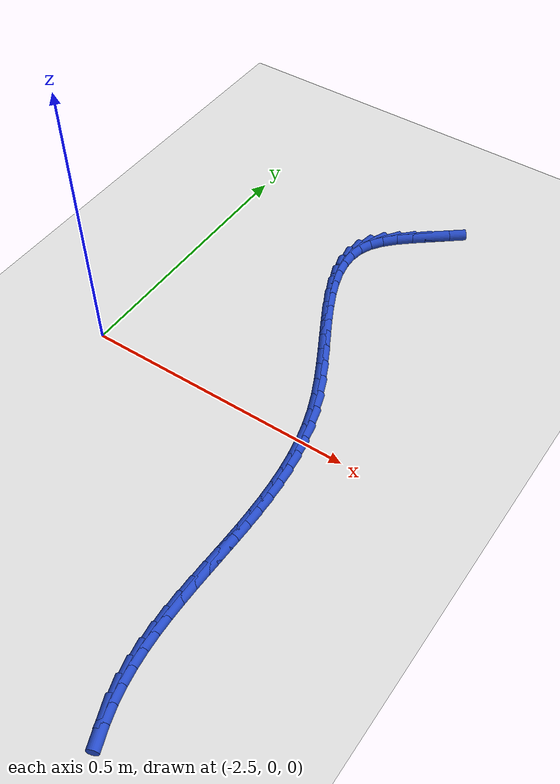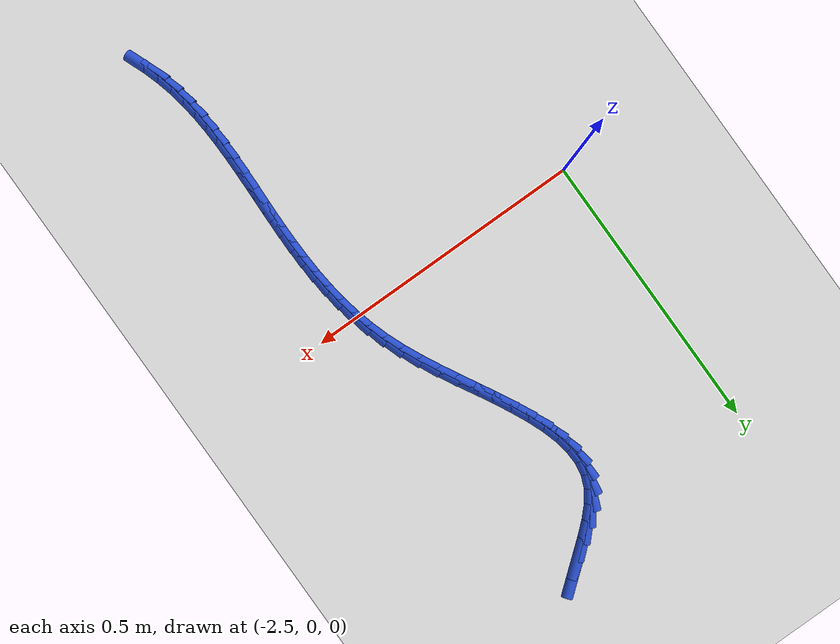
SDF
<sdf version="1.6">
 <world name="default">
  <model name="ground_plane">
   <static>1</static>
   <link name="link">
    <collision name="collision">
     <geometry><plane><normal>0 0 1</normal><size>100 100</size></plane></geometry>
     <surface><friction><ode><mu>100</mu><mu2>50</mu2></ode></friction></surface>
    </collision>
    <visual name="visual">
     <cast_shadows>0</cast_shadows>
     <geometry><plane><normal>0 0 1</normal><size>100 100</size></plane></geometry>
     <material>
      <script><uri>file://media/materials/scripts/gazebo.material</uri><name>Gazebo/WhiteGlow</name></script>
     </material>
    </visual>
   </link>
  </model>
  <model name="line">
   <link name="link_99">
    <pose>-2.1199266256740112 0.5585804029105083 0.01 0 1.57 0.6795378370866663</pose>
    <collision name="collision">
     <geometry><cylinder><radius>0.01</radius><length>0.08</length></cylinder></geometry>
    </collision>
    <visual name="visual">
     <material>
      <script><name>Gazebo/Blue</name><uri>file://media/materials/scripts/gazebo.material</uri></script>
     </material>
     <geometry><cylinder><radius>0.01</radius><length>0.08</length></cylinder></geometry>
    </visual>
   </link>
   <link name="link_100">
    <pose>-2.1450293427928253 0.5382999861786456 0.01 0 1.57 0.6789704126665324</pose>
    <collision name="collision">
     <geometry><cylinder><radius>0.01</radius><length>0.08</length></cylinder></geometry>
    </collision>
    <visual name="visual">
     <material>
      <script><name>Gazebo/Blue</name><uri>file://media/materials/scripts/gazebo.material</uri></script>
     </material>
     <geometry><cylinder><radius>0.01</radius><length>0.08</length></cylinder></geometry>
    </visual>
   </link>
   <link name="link_101">
    <pose>-2.169661494198632 0.5184228271902851 0.01 0 1.57 0.7187098894830343</pose>
    <collision name="collision">
     <geometry><cylinder><radius>0.01</radius><length>0.08</length></cylinder></geometry>
    </collision>
    <visual name="visual">
     <material>
      <script><name>Gazebo/Blue</name><uri>file://media/materials/scripts/gazebo.material</uri></script>
     </material>
     <geometry><cylinder><radius>0.01</radius><length>0.08</length></cylinder></geometry>
    </visual>
   </link>
   <link name="link_102">
    <pose>-2.1924496767111417 0.49848799966165713 0.01 0 1.57 0.8074465282520207</pose>
    <collision name="collision">
     <geometry><cylinder><radius>0.01</radius><length>0.08</length></cylinder></geometry>
    </collision>
    <visual name="visual">
     <material>
      <script><name>Gazebo/Blue</name><uri>file://media/materials/scripts/gazebo.material</uri></script>
     </material>
     <geometry><cylinder><radius>0.01</radius><length>0.08</length></cylinder></geometry>
    </visual>
   </link>
   <link name="link_103">
    <pose>-2.2120204871500655 0.47803457730899257 0.01 0 1.57 0.9607917276209877</pose>
    <collision name="collision">
     <geometry><cylinder><radius>0.01</radius><length>0.08</length></cylinder></geometry>
    </collision>
    <visual name="visual">
     <material>
      <script><name>Gazebo/Blue</name><uri>file://media/materials/scripts/gazebo.material</uri></script>
     </material>
     <geometry><cylinder><radius>0.01</radius><length>0.08</length></cylinder></geometry>
    </visual>
   </link>
   <link name="link_104">
    <pose>-2.227000522335113 0.45660163384852176 0.01 0 1.57 1.1820311931334824</pose>
    <collision name="collision">
     <geometry><cylinder><radius>0.01</radius><length>0.08</length></cylinder></geometry>
    </collision>
    <visual name="visual">
     <material>
      <script><name>Gazebo/Blue</name><uri>file://media/materials/scripts/gazebo.material</uri></script>
     </material>
     <geometry><cylinder><radius>0.01</radius><length>0.08</length></cylinder></geometry>
    </visual>
   </link>
   <link name="link_105">
    <pose>-2.2363324832610956 0.43381920079459246 0.01 0 1.57 1.4083961051687404</pose>
    <collision name="collision">
     <geometry><cylinder><radius>0.01</radius><length>0.08</length></cylinder></geometry>
    </collision>
    <visual name="visual">
     <material>
      <script><name>Gazebo/Blue</name><uri>file://media/materials/scripts/gazebo.material</uri></script>
     </material>
     <geometry><cylinder><radius>0.01</radius><length>0.08</length></cylinder></geometry>
    </visual>
   </link>
   <link name="link_106">
    <pose>-2.240284464303426 0.409698686666454 0.01 0 1.57 -1.5387492273663177</pose>
    <collision name="collision">
     <geometry><cylinder><radius>0.01</radius><length>0.08</length></cylinder></geometry>
    </collision>
    <visual name="visual">
     <material>
      <script><name>Gazebo/Blue</name><uri>file://media/materials/scripts/gazebo.material</uri></script>
     </material>
     <geometry><cylinder><radius>0.01</radius><length>0.08</length></cylinder></geometry>
    </visual>
   </link>
   <link name="link_107">
    <pose>-2.239471880376734 0.3843514401738888 0.01 0 1.57 -1.3854487558900443</pose>
    <collision name="collision">
     <geometry><cylinder><radius>0.01</radius><length>0.08</length></cylinder></geometry>
    </collision>
    <visual name="visual">
     <material>
      <script><name>Gazebo/Blue</name><uri>file://media/materials/scripts/gazebo.material</uri></script>
     </material>
     <geometry><cylinder><radius>0.01</radius><length>0.08</length></cylinder></geometry>
    </visual>
   </link>
   <link name="link_108">
    <pose>-2.2345101476777214 0.35788881039558984 0.01 0 1.57 -1.2708285435798585</pose>
    <collision name="collision">
     <geometry><cylinder><radius>0.01</radius><length>0.08</length></cylinder></geometry>
    </collision>
    <visual name="visual">
     <material>
      <script><name>Gazebo/Blue</name><uri>file://media/materials/scripts/gazebo.material</uri></script>
     </material>
     <geometry><cylinder><radius>0.01</radius><length>0.08</length></cylinder></geometry>
    </visual>
   </link>
   <link name="link_109">
    <pose>-2.2260146824030898 0.3304221464102519 0.01 0 1.57 -1.1881626240495404</pose>
    <collision name="collision">
     <geometry><cylinder><radius>0.01</radius><length>0.08</length></cylinder></geometry>
    </collision>
    <visual name="visual">
     <material>
      <script><name>Gazebo/Blue</name><uri>file://media/materials/scripts/gazebo.material</uri></script>
     </material>
     <geometry><cylinder><radius>0.01</radius><length>0.08</length></cylinder></geometry>
    </visual>
   </link>
   <link name="link_110">
    <pose>-2.2146009007495406 0.30206279729656815 0.01 0 1.57 -1.1308577144128675</pose>
    <collision name="collision">
     <geometry><cylinder><radius>0.01</radius><length>0.08</length></cylinder></geometry>
    </collision>
    <visual name="visual">
     <material>
      <script><name>Gazebo/Blue</name><uri>file://media/materials/scripts/gazebo.material</uri></script>
     </material>
     <geometry><cylinder><radius>0.01</radius><length>0.08</length></cylinder></geometry>
    </visual>
   </link>
   <link name="link_111">
    <pose>-2.2008842189137754 0.27292211213323214 0.01 0 1.57 -1.093851897696863</pose>
    <collision name="collision">
     <geometry><cylinder><radius>0.01</radius><length>0.08</length></cylinder></geometry>
    </collision>
    <visual name="visual">
     <material>
      <script><name>Gazebo/Blue</name><uri>file://media/materials/scripts/gazebo.material</uri></script>
     </material>
     <geometry><cylinder><radius>0.01</radius><length>0.08</length></cylinder></geometry>
    </visual>
   </link>
   <link name="link_112">
    <pose>-2.1854800530924954 0.24311143999893725 0.01 0 1.57 -1.073707041160102</pose>
    <collision name="collision">
     <geometry><cylinder><radius>0.01</radius><length>0.08</length></cylinder></geometry>
    </collision>
    <visual name="visual">
     <material>
      <script><name>Gazebo/Blue</name><uri>file://media/materials/scripts/gazebo.material</uri></script>
     </material>
     <geometry><cylinder><radius>0.01</radius><length>0.08</length></cylinder></geometry>
    </visual>
   </link>
   <link name="link_113">
    <pose>-2.169003819482403 0.2127421299723778 0.01 0 1.57 -1.068357907449552</pose>
    <collision name="collision">
     <geometry><cylinder><radius>0.01</radius><length>0.08</length></cylinder></geometry>
    </collision>
    <visual name="visual">
     <material>
      <script><name>Gazebo/Blue</name><uri>file://media/materials/scripts/gazebo.material</uri></script>
     </material>
     <geometry><cylinder><radius>0.01</radius><length>0.08</length></cylinder></geometry>
    </visual>
   </link>
   <link name="link_114">
    <pose>-2.152070934280199 0.18192553113224713 0.01 0 1.57 -1.0768630019817886</pose>
    <collision name="collision">
     <geometry><cylinder><radius>0.01</radius><length>0.08</length></cylinder></geometry>
    </collision>
    <visual name="visual">
     <material>
      <script><name>Gazebo/Blue</name><uri>file://media/materials/scripts/gazebo.material</uri></script>
     </material>
     <geometry><cylinder><radius>0.01</radius><length>0.08</length></cylinder></geometry>
    </visual>
   </link>
   <link name="link_115">
    <pose>-2.1352968136825843 0.15077299255723836 0.01 0 1.57 -1.0992413630656974</pose>
    <collision name="collision">
     <geometry><cylinder><radius>0.01</radius><length>0.08</length></cylinder></geometry>
    </collision>
    <visual name="visual">
     <material>
      <script><name>Gazebo/Blue</name><uri>file://media/materials/scripts/gazebo.material</uri></script>
     </material>
     <geometry><cylinder><radius>0.01</radius><length>0.08</length></cylinder></geometry>
    </visual>
   </link>
   <link name="link_116">
    <pose>-2.119296873886262 0.11939586332604618 0.01 0 1.57 -1.136392260298267</pose>
    <collision name="collision">
     <geometry><cylinder><radius>0.01</radius><length>0.08</length></cylinder></geometry>
    </collision>
    <visual name="visual">
     <material>
      <script><name>Gazebo/Blue</name><uri>file://media/materials/scripts/gazebo.material</uri></script>
     </material>
     <geometry><cylinder><radius>0.01</radius><length>0.08</length></cylinder></geometry>
    </visual>
   </link>
   <link name="link_117">
    <pose>-2.104686531087934 0.08790549251736374 0.01 0 1.57 -1.1899909382382505</pose>
    <collision name="collision">
     <geometry><cylinder><radius>0.01</radius><length>0.08</length></cylinder></geometry>
    </collision>
    <visual name="visual">
     <material>
      <script><name>Gazebo/Blue</name><uri>file://media/materials/scripts/gazebo.material</uri></script>
     </material>
     <geometry><cylinder><radius>0.01</radius><length>0.08</length></cylinder></geometry>
    </visual>
   </link>
   <link name="link_118">
    <pose>-2.092078576600445 0.05641291782274466 0.01 0 1.57 -1.254895404778519</pose>
    <collision name="collision">
     <geometry><cylinder><radius>0.01</radius><length>0.08</length></cylinder></geometry>
    </collision>
    <visual name="visual">
     <material>
      <script><name>Gazebo/Blue</name><uri>file://media/materials/scripts/gazebo.material</uri></script>
     </material>
     <geometry><cylinder><radius>0.01</radius><length>0.08</length></cylinder></geometry>
    </visual>
   </link>
   <link name="link_119">
    <pose>-2.081810231692027 0.02499648635664493 0.01 0 1.57 -1.3175795117682252</pose>
    <collision name="collision">
     <geometry><cylinder><radius>0.01</radius><length>0.08</length></cylinder></geometry>
    </collision>
    <visual name="visual">
     <material>
      <script><name>Gazebo/Blue</name><uri>file://media/materials/scripts/gazebo.material</uri></script>
     </material>
     <geometry><cylinder><radius>0.01</radius><length>0.08</length></cylinder></geometry>
    </visual>
   </link>
   <link name="link_120">
    <pose>-2.0737047612483774 -0.006326424857663333 0.01 0 1.57 -1.3755026729109945</pose>
    <collision name="collision">
     <geometry><cylinder><radius>0.01</radius><length>0.08</length></cylinder></geometry>
    </collision>
    <visual name="visual">
     <material>
      <script><name>Gazebo/Blue</name><uri>file://media/materials/scripts/gazebo.material</uri></script>
     </material>
     <geometry><cylinder><radius>0.01</radius><length>0.08</length></cylinder></geometry>
    </visual>
   </link>
   <link name="link_121">
    <pose>-2.067529240212526 -0.037545104549187844 0.01 0 1.57 -1.4277933556775826</pose>
    <collision name="collision">
     <geometry><cylinder><radius>0.01</radius><length>0.08</length></cylinder></geometry>
    </collision>
    <visual name="visual">
     <material>
      <script><name>Gazebo/Blue</name><uri>file://media/materials/scripts/gazebo.material</uri></script>
     </material>
     <geometry><cylinder><radius>0.01</radius><length>0.08</length></cylinder></geometry>
    </visual>
   </link>
   <link name="link_122">
    <pose>-2.0630507435275027 -0.068648841446936 0.01 0 1.57 -1.473794297307109</pose>
    <collision name="collision">
     <geometry><cylinder><radius>0.01</radius><length>0.08</length></cylinder></geometry>
    </collision>
    <visual name="visual">
     <material>
      <script><name>Gazebo/Blue</name><uri>file://media/materials/scripts/gazebo.material</uri></script>
     </material>
     <geometry><cylinder><radius>0.01</radius><length>0.08</length></cylinder></geometry>
    </visual>
   </link>
   <link name="link_123">
    <pose>-2.0600363461363385 -0.09962692427991512 0.01 0 1.57 -1.5130420841774819</pose>
    <collision name="collision">
     <geometry><cylinder><radius>0.01</radius><length>0.08</length></cylinder></geometry>
    </collision>
    <visual name="visual">
     <material>
      <script><name>Gazebo/Blue</name><uri>file://media/materials/scripts/gazebo.material</uri></script>
     </material>
     <geometry><cylinder><radius>0.01</radius><length>0.08</length></cylinder></geometry>
    </visual>
   </link>
   <link name="link_124">
    <pose>-2.0582531229820638 -0.13046864177713255 0.01 0 1.57 -1.545228250695463</pose>
    <collision name="collision">
     <geometry><cylinder><radius>0.01</radius><length>0.08</length></cylinder></geometry>
    </collision>
    <visual name="visual">
     <material>
      <script><name>Gazebo/Blue</name><uri>file://media/materials/scripts/gazebo.material</uri></script>
     </material>
     <geometry><cylinder><radius>0.01</radius><length>0.08</length></cylinder></geometry>
    </visual>
   </link>
   <link name="link_125">
    <pose>-2.0574681490077094 -0.16116328266759652 0.01 0 1.57 -1.5701528469744557</pose>
    <collision name="collision">
     <geometry><cylinder><radius>0.01</radius><length>0.08</length></cylinder></geometry>
    </collision>
    <visual name="visual">
     <material>
      <script><name>Gazebo/Blue</name><uri>file://media/materials/scripts/gazebo.material</uri></script>
     </material>
     <geometry><cylinder><radius>0.01</radius><length>0.08</length></cylinder></geometry>
    </visual>
   </link>
   <link name="link_126">
    <pose>-2.057448499156304 -0.19170013568031266 0.01 0 1.57 1.553913604067462</pose>
    <collision name="collision">
     <geometry><cylinder><radius>0.01</radius><length>0.08</length></cylinder></geometry>
    </collision>
    <visual name="visual">
     <material>
      <script><name>Gazebo/Blue</name><uri>file://media/materials/scripts/gazebo.material</uri></script>
     </material>
     <geometry><cylinder><radius>0.01</radius><length>0.08</length></cylinder></geometry>
    </visual>
   </link>
   <link name="link_127">
    <pose>-2.0579612483708787 -0.2220684895442892 0.01 0 1.57 1.5438983350073008</pose>
    <collision name="collision">
     <geometry><cylinder><radius>0.01</radius><length>0.08</length></cylinder></geometry>
    </collision>
    <visual name="visual">
     <material>
      <script><name>Gazebo/Blue</name><uri>file://media/materials/scripts/gazebo.material</uri></script>
     </material>
     <geometry><cylinder><radius>0.01</radius><length>0.08</length></cylinder></geometry>
    </visual>
   </link>
   <link name="link_128">
    <pose>-2.058773471594464 -0.25225763298853343 0.01 0 1.57 1.5415115354393067</pose>
    <collision name="collision">
     <geometry><cylinder><radius>0.01</radius><length>0.08</length></cylinder></geometry>
    </collision>
    <visual name="visual">
     <material>
      <script><name>Gazebo/Blue</name><uri>file://media/materials/scripts/gazebo.material</uri></script>
     </material>
     <geometry><cylinder><radius>0.01</radius><length>0.08</length></cylinder></geometry>
    </visual>
   </link>
   <link name="link_129">
    <pose>-2.0596522437700906 -0.28225685474205287 0.01 0 1.57 1.5468938393421277</pose>
    <collision name="collision">
     <geometry><cylinder><radius>0.01</radius><length>0.08</length></cylinder></geometry>
    </collision>
    <visual name="visual">
     <material>
      <script><name>Gazebo/Blue</name><uri>file://media/materials/scripts/gazebo.material</uri></script>
     </material>
     <geometry><cylinder><radius>0.01</radius><length>0.08</length></cylinder></geometry>
    </visual>
   </link>
   <link name="link_130">
    <pose>-2.0603646398407873 -0.3120554435338546 0.01 0 1.57 1.5602146309528782</pose>
    <collision name="collision">
     <geometry><cylinder><radius>0.01</radius><length>0.08</length></cylinder></geometry>
    </collision>
    <visual name="visual">
     <material>
      <script><name>Gazebo/Blue</name><uri>file://media/materials/scripts/gazebo.material</uri></script>
     </material>
     <geometry><cylinder><radius>0.01</radius><length>0.08</length></cylinder></geometry>
    </visual>
   </link>
   <link name="link_131">
    <pose>-2.0606777347495866 -0.3416426880929462 0.01 0 1.57 -1.559929080323329</pose>
    <collision name="collision">
     <geometry><cylinder><radius>0.01</radius><length>0.08</length></cylinder></geometry>
    </collision>
    <visual name="visual">
     <material>
      <script><name>Gazebo/Blue</name><uri>file://media/materials/scripts/gazebo.material</uri></script>
     </material>
     <geometry><cylinder><radius>0.01</radius><length>0.08</length></cylinder></geometry>
    </visual>
   </link>
   <link name="link_132">
    <pose>-2.060358603439517 -0.3710078771483356 0.01 0 1.57 -1.5301669944932637</pose>
    <collision name="collision">
     <geometry><cylinder><radius>0.01</radius><length>0.08</length></cylinder></geometry>
    </collision>
    <visual name="visual">
     <material>
      <script><name>Gazebo/Blue</name><uri>file://media/materials/scripts/gazebo.material</uri></script>
     </material>
     <geometry><cylinder><radius>0.01</radius><length>0.08</length></cylinder></geometry>
    </visual>
   </link>
   <link name="link_133">
    <pose>-2.0591743208536095 -0.40014029942902885 0.01 0 1.57 -1.4919555084154257</pose>
    <collision name="collision">
     <geometry><cylinder><radius>0.01</radius><length>0.08</length></cylinder></geometry>
    </collision>
    <visual name="visual">
     <material>
      <script><name>Gazebo/Blue</name><uri>file://media/materials/scripts/gazebo.material</uri></script>
     </material>
     <geometry><cylinder><radius>0.01</radius><length>0.08</length></cylinder></geometry>
    </visual>
   </link>
   <link name="link_134">
    <pose>-2.056891961934894 -0.42902924366403383 0.01 0 1.57 -1.4452718544506842</pose>
    <collision name="collision">
     <geometry><cylinder><radius>0.01</radius><length>0.08</length></cylinder></geometry>
    </collision>
    <visual name="visual">
     <material>
      <script><name>Gazebo/Blue</name><uri>file://media/materials/scripts/gazebo.material</uri></script>
     </material>
     <geometry><cylinder><radius>0.01</radius><length>0.08</length></cylinder></geometry>
    </visual>
   </link>
   <link name="link_135">
    <pose>-2.0532786016264017 -0.4576639985823581 0.01 0 1.57 -1.3902901265583332</pose>
    <collision name="collision">
     <geometry><cylinder><radius>0.01</radius><length>0.08</length></cylinder></geometry>
    </collision>
    <visual name="visual">
     <material>
      <script><name>Gazebo/Blue</name><uri>file://media/materials/scripts/gazebo.material</uri></script>
     </material>
     <geometry><cylinder><radius>0.01</radius><length>0.08</length></cylinder></geometry>
    </visual>
   </link>
   <link name="link_136">
    <pose>-2.048101314871162 -0.4860338529130089 0.01 0 1.57 -1.3274740308224204</pose>
    <collision name="collision">
     <geometry><cylinder><radius>0.01</radius><length>0.08</length></cylinder></geometry>
    </collision>
    <visual name="visual">
     <material>
      <script><name>Gazebo/Blue</name><uri>file://media/materials/scripts/gazebo.material</uri></script>
     </material>
     <geometry><cylinder><radius>0.01</radius><length>0.08</length></cylinder></geometry>
    </visual>
   </link>
   <link name="link_137">
    <pose>-2.041127176612207 -0.5141280953849936 0.01 0 1.57 -1.2577328917849904</pose>
    <collision name="collision">
     <geometry><cylinder><radius>0.01</radius><length>0.08</length></cylinder></geometry>
    </collision>
    <visual name="visual">
     <material>
      <script><name>Gazebo/Blue</name><uri>file://media/materials/scripts/gazebo.material</uri></script>
     </material>
     <geometry><cylinder><radius>0.01</radius><length>0.08</length></cylinder></geometry>
    </visual>
   </link>
   <link name="link_138">
    <pose>-2.0321253552201886 -0.541936504568232 0.01 0 1.57 -1.1961683941302366</pose>
    <collision name="collision">
     <geometry><cylinder><radius>0.01</radius><length>0.08</length></cylinder></geometry>
    </collision>
    <visual name="visual">
     <material>
      <script><name>Gazebo/Blue</name><uri>file://media/materials/scripts/gazebo.material</uri></script>
     </material>
     <geometry><cylinder><radius>0.01</radius><length>0.08</length></cylinder></geometry>
    </visual>
   </link>
  </model>
 </world>
</sdf>
